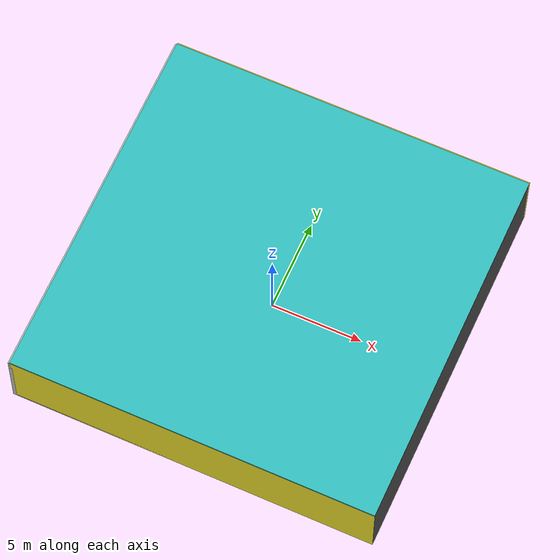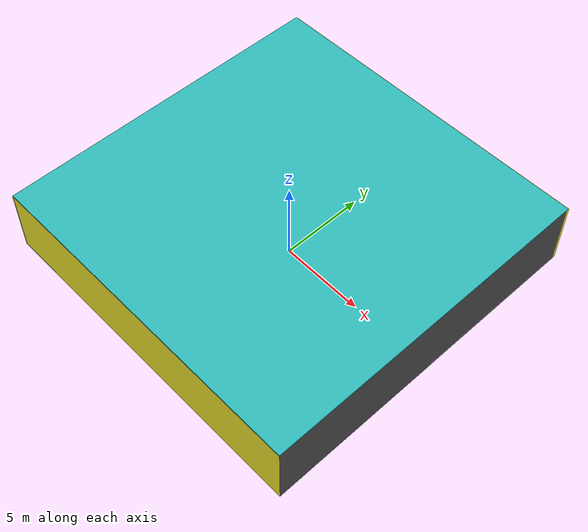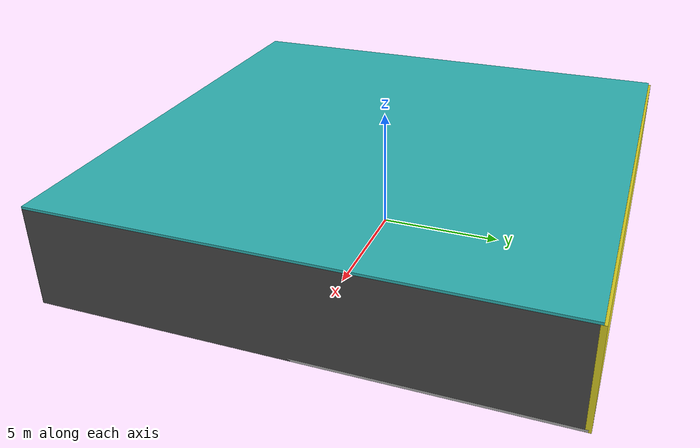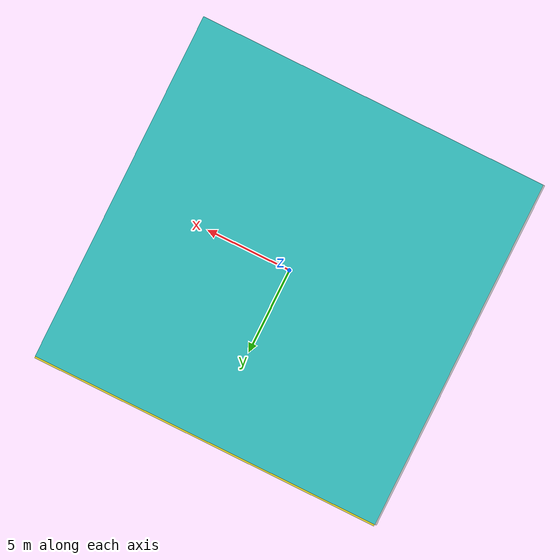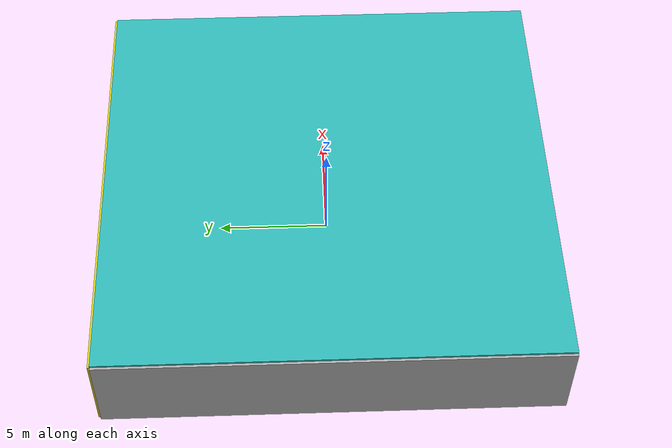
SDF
<sdf version="1.4">
 <world name="default">
  <physics type="ode">
   <max_step_size>0.001</max_step_size>
   <real_time_factor>1</real_time_factor>
   <real_time_update_rate>1000</real_time_update_rate>
   <gravity>0 0 -9.8</gravity>
  </physics>
  <scene><ambient>0.4 0.4 0.4 1</ambient><background>0.7 0.7 0.7 1</background><shadows>1</shadows></scene>
  <model name="Surrounding">
   <static>1</static>
   <link name="Ceiling">
    <collision name="Ceiling_Collision"><geometry><box><size>20 20 0.1</size></box></geometry></collision>
    <visual name="Ceiling_Visual">
     <geometry><box><size>20 20 0.1</size></box></geometry>
     <material>
      <script>
       <uri>file://media/materials/scripts/gazebo.material</uri>
       <name>Gazebo/TurquoiseGlowOutline</name>
      </script>
     </material>
    </visual>
    <pose>0 0 4.05 0 0 0</pose>
   </link>
   <link name="Wall_South">
    <collision name="Wall_South_Collision">
     <geometry><box><size>20 0 4</size></box></geometry>
     <pose>0 0 2 0 -0 0</pose>
    </collision>
    <visual name="Wall_South_Visual">
     <pose>0 0 2 0 -0 0</pose>
     <geometry><box><size>20 0 4</size></box></geometry>
     <material>
      <script><uri>file://media/materials/scripts/gazebo.material</uri><name>Gazebo/YellowGlow</name></script>
     </material>
    </visual>
    <velocity_decay><linear>0</linear><angular>0</angular></velocity_decay>
    <pose>0 -10 0 0 -0 0</pose>
   </link>
   <link name="Wall_East">
    <collision name="Wall_21_Collision">
     <geometry><box><size>20 0 4</size></box></geometry>
     <pose>0 0 2 0 -0 0</pose>
    </collision>
    <visual name="Wall_21_Visual">
     <pose>0 0 2 0 -0 0</pose>
     <geometry><box><size>20 0 4</size></box></geometry>
     <material>
      <script><uri>file://media/materials/scripts/gazebo.material</uri><name>Gazebo/DarkGrey</name></script>
     </material>
    </visual>
    <velocity_decay><linear>0</linear><angular>0</angular></velocity_decay>
    <pose>10 0 0 0 -0 1.5708</pose>
   </link>
   <link name="Wall_North">
    <collision name="Wall_22_Collision">
     <geometry><box><size>20 0.2 4</size></box></geometry>
     <pose>0 0 2 0 -0 0</pose>
    </collision>
    <visual name="Wall_22_Visual">
     <pose>0 0 2 0 -0 0</pose>
     <geometry><box><size>20 0.2 4</size></box></geometry>
     <material>
      <script><uri>file://media/materials/scripts/gazebo.material</uri><name>Gazebo/Yellow</name></script>
     </material>
    </visual>
    <velocity_decay><linear>0</linear><angular>0</angular></velocity_decay>
    <pose>0 10 0 0 -0 0</pose>
   </link>
   <link name="Wall_West">
    <collision name="Wall_23_Collision">
     <geometry><box><size>20 0.2 4</size></box></geometry>
     <pose>0 0 2 0 -0 0</pose>
    </collision>
    <visual name="Wall_23_Visual">
     <pose>0 0 2 0 -0 0</pose>
     <geometry><box><size>20 0.2 4</size></box></geometry>
     <material>
      <script><uri>file://media/materials/scripts/gazebo.material</uri><name>Gazebo/Pioneer2Body</name></script>
     </material>
    </visual>
    <velocity_decay><linear>0</linear><angular>0</angular></velocity_decay>
    <pose>-10 0 0 0 0 -1.5708</pose>
   </link>
   <link name="Ground_link">
    <collision name="collision">
     <pose>0 0 .05 0 -0 0</pose>
     <geometry><box><size>20 20 0.1</size></box></geometry>
    </collision>
    <visual name="visual">
     <pose>0 0 .05 0 -0 0</pose>
     <geometry><box><size>20 20 0.1</size></box></geometry>
     <material>
      <script><uri>file://media/materials/scripts/gazebo.material</uri><name>Gazebo/PioneerBody</name></script>
     </material>
    </visual>
   </link>
   <static>1</static>
  </model>
  <spherical_coordinates>
   <surface_model>EARTH_WGS84</surface_model>
   <latitude_deg>0</latitude_deg>
   <longitude_deg>0</longitude_deg>
   <elevation>0</elevation>
   <heading_deg>0</heading_deg>
  </spherical_coordinates>
  <light name="lightball_0" type="diffuse">
   <diffuse>0.8 0.8 0.8 1</diffuse>
   <specular>0.2 0.2 0.2 1</specular>
   <attenuation>
    <range>100</range>
    <constant>0.7</constant>
    <linear>0.01</linear>
    <quadratic>0.001</quadratic>
   </attenuation>
   <direction>-0.5 0.1 -0.9</direction>
   <pose>2.09287444712 0.26154401377 1.91938050808 0 0 0</pose>
  </light>
  <light name="lightball_1" type="diffuse">
   <diffuse>0.8 0.8 0.8 1</diffuse>
   <specular>0.2 0.2 0.2 1</specular>
   <attenuation>
    <range>100</range>
    <constant>0.7</constant>
    <linear>0.01</linear>
    <quadratic>0.001</quadratic>
   </attenuation>
   <direction>-0.5 0.1 -0.9</direction>
   <pose>0.694462316788 2.31059564942 0.501912507264 0 0 0</pose>
  </light>
  <include><uri>model://table</uri><pose>-6.72860301817 7.49026104786 0 0 0 1.4713402715</pose></include>
  <include>
   <uri>model://textured_shapes</uri>
   <pose>-5.28834143657 1.20883297494 0 0 0 1.55733736028</pose>
  </include>
  <include><uri>model://cabinet</uri><pose>-1.95925237347 -4.20538149253 0 0 0 0.928605705657</pose></include>
  <include><uri>model://cabinet</uri><pose>1.36795697289 -3.71600151261 0 0 0 0.0890691900727</pose></include>
  <include>
   <uri>model://textured_shapes</uri>
   <pose>3.96156772198 -7.86280690803 0 0 0 1.35724225109</pose>
  </include>
  <include><uri>model://table</uri><pose>4.54692012043 -1.63456795944 0 0 0 3.03039932294</pose></include>
  <include>
   <uri>model://robocup_3Dsim_goal</uri>
   <pose>6.71703594841 -4.91411026014 0 0 0 2.96063182406</pose>
  </include>
  <include><uri>model://table</uri><pose>7.04090772326 2.04915665478 0 0 0 2.82489372458</pose></include>
 </world>
</sdf>

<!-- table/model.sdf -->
<sdf version="1.5">
  <model name="table">
    <static>true</static>
    <link name="link">
      <collision name="surface">
        <pose>0 0 1.0 0 0 0</pose>
        <geometry>
          <box>
            <size>1.5 0.8 0.03</size>
          </box>
        </geometry>
        <surface>
          <friction>
            <ode>
              <mu>0.6</mu>
              <mu2>0.6</mu2>
            </ode>
          </friction>
        </surface>
      </collision>
      <visual name="visual1">
        <pose>0 0 1.0 0 0 0</pose>
        <geometry>
          <box>
            <size>1.5 0.8 0.03</size>
          </box>
        </geometry>
        <material>
          <script>
            <uri>model://media/materials/scripts/gazebo.material</uri>
            <name>Gazebo/Wood</name>
          </script>
        </material>
      </visual>
      <collision name="front_left_leg">
        <pose>0.68 0.38 0.5 0 0 0</pose>
        <geometry>
          <cylinder>
            <radius>0.02</radius>
            <length>1.0</length>
          </cylinder>
        </geometry>
      </collision>
      <visual name="front_left_leg">
        <pose>0.68 0.38 0.5 0 0 0</pose>
        <geometry>
          <cylinder>
            <radius>0.02</radius>
            <length>1.0</length>
          </cylinder>
        </geometry>
        <material>
          <script>
            <uri>model://media/materials/scripts/gazebo.material</uri>
            <name>Gazebo/Grey</name>
          </script>
        </material>
      </visual>
      <collision name="front_right_leg">
        <pose>0.68 -0.38 0.5 0 0 0</pose>
        <geometry>
          <cylinder>
            <radius>0.02</radius>
            <length>1.0</length>
          </cylinder>
        </geometry>
      </collision>
      <visual name="front_right_leg">
        <pose>0.68 -0.38 0.5 0 0 0</pose>
        <geometry>
          <cylinder>
            <radius>0.02</radius>
            <length>1.0</length>
          </cylinder>
        </geometry>
        <material>
          <script>
            <uri>model://media/materials/scripts/gazebo.material</uri>
            <name>Gazebo/Grey</name>
          </script>
        </material>
      </visual>
      <collision name="back_right_leg">
        <pose>-0.68 -0.38 0.5 0 0 0</pose>
        <geometry>
          <cylinder>
            <radius>0.02</radius>
            <length>1.0</length>
          </cylinder>
        </geometry>
      </collision>
      <visual name="back_right_leg">
        <pose>-0.68 -0.38 0.5 0 0 0</pose>
        <geometry>
          <cylinder>
            <radius>0.02</radius>
            <length>1.0</length>
          </cylinder>
        </geometry>
        <material>
          <script>
            <uri>model://media/materials/scripts/gazebo.material</uri>
            <name>Gazebo/Grey</name>
          </script>
        </material>
      </visual>
      <collision name="back_left_leg">
        <pose>-0.68 0.38 0.5 0 0 0</pose>
        <geometry>
          <cylinder>
            <radius>0.02</radius>
            <length>1.0</length>
          </cylinder>
        </geometry>
      </collision>
      <visual name="back_left_leg">
        <pose>-0.68 0.38 0.5 0 0 0</pose>
        <geometry>
          <cylinder>
            <radius>0.02</radius>
            <length>1.0</length>
          </cylinder>
        </geometry>
        <material>
          <script>
            <uri>model://media/materials/scripts/gazebo.material</uri>
            <name>Gazebo/Grey</name>
          </script>
        </material>
      </visual>
    </link>
  </model>
</sdf>

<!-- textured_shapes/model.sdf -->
<sdf version="1.6">
  <model name="textured_shapes">
    <pose>0 0 0.5 0 0 0</pose>
    <link name="box">
      <pose>0 -1.5 0 0 0 0</pose>
      <collision name="collision">
        <geometry>
          <box>
            <size>1 1 1</size>
          </box>
        </geometry>
      </collision>
      <visual name="visual">
        <geometry>
          <box>
            <size>1 1 1</size>
          </box>
        </geometry>
        <material>
          <script>
            <uri>model://../model_source/models/textured_shapes/materials/scripts</uri>
            <uri>model://../model_source/models/textured_shapes/materials/textures</uri>
            <name>TexturedShape/Squares</name>
          </script>
        </material>
      </visual>
    </link>
    <link name="sphere">
      <collision name="collision">
        <geometry>
          <sphere>
            <radius>0.5</radius>
          </sphere>
        </geometry>
      </collision>
      <visual name="visual">
        <geometry>
          <sphere>
            <radius>0.5</radius>
          </sphere>
        </geometry>
        <material>
          <script>
            <uri>model://../model_source/models/textured_shapes/materials/scripts</uri>
            <uri>model://../model_source/models/textured_shapes/materials/textures</uri>
            <name>TexturedShape/Squares</name>
          </script>
        </material>
      </visual>
    </link>
    <link name="cylinder">
      <pose>0 1.5 0 0 0 0</pose>
      <collision name="collision">
        <geometry>
          <cylinder>
            <radius>0.5</radius>
            <length>1</length>
          </cylinder>
        </geometry>
      </collision>
      <visual name="visual">
        <geometry>
          <cylinder>
            <radius>0.5</radius>
            <length>1</length>
          </cylinder>
        </geometry>
        <material>
          <script>
            <uri>model://../model_source/models/textured_shapes/materials/scripts</uri>
            <uri>model://../model_source/models/textured_shapes/materials/textures</uri>
            <name>TexturedShape/Squares</name>
          </script>
        </material>
      </visual>
    </link>
  </model>
</sdf>

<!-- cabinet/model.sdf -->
<sdf version="1.5">
  <model name="cabinet">
    <static>true</static>
    <link name="cabinet_bottom_plate">
      <inertial>
        <pose>0 0 -1 0 0 0</pose>
        <inertia>
          <ixx>2.050000</ixx>
          <ixy>0</ixy>
          <ixz>0</ixz>
          <iyy>2.050000</iyy>
          <iyz>0</iyz>
          <izz>2.050000</izz>
        </inertia>
        <mass>25.000000</mass>
      </inertial>
      <collision name="cabinet_bottom_plate_geom">
        <pose>0 0 0.010000 0 0 0</pose>
        <geometry>
          <box>
            <size>0.450000 0.450000 0.020000</size>
          </box>
        </geometry>
      </collision>
      <visual name="cabinet_bottom_plate_geom_visual">
        <pose>0 0 0.010000 0 0 0</pose>
        <geometry>
          <box>
            <size>0.450000 0.450000 0.020000</size>
          </box>
        </geometry>
        <material>
          <script>
            <uri>model://media/materials/scripts/gazebo.material</uri>
            <name>Gazebo/Wood</name>
          </script>
        </material>
      </visual>
      <collision name="cabinet_bottom_plate_geom_cabinet_back_plate">
        <pose>0.235000 0 0.510000 0 0 0</pose>
        <geometry>
          <box>
            <size>0.020000 0.450000 1.020000</size>
          </box>
        </geometry>
      </collision>
      <visual name="cabinet_bottom_plate_geom_cabinet_back_plate_visual">
        <pose>0.235000 0 0.510000 0 0 0</pose>
        <geometry>
          <box>
            <size>0.020000 0.450000 1.020000</size>
          </box>
        </geometry>
        <material>
          <script>
            <uri>model://media/materials/scripts/gazebo.material</uri>
            <name>Gazebo/Wood</name>
          </script>
        </material>
      </visual>
      <collision name="cabinet_bottom_plate_geom_cabinet_left_plate">
        <pose>0 0.235000 0.510000 0 0 0</pose>
        <geometry>
          <box>
            <size>0.450000 0.020000 1.020000</size>
          </box>
        </geometry>
      </collision>
      <visual name="cabinet_bottom_plate_geom_cabinet_left_plate_visual">
        <pose>0 0.235000 0.510000 0 0 0</pose>
        <geometry>
          <box>
            <size>0.450000 0.020000 1.020000</size>
          </box>
        </geometry>
        <material>
          <script>
            <uri>model://media/materials/scripts/gazebo.material</uri>
            <name>Gazebo/Wood</name>
          </script>
        </material>
      </visual>
      <collision name="cabinet_bottom_plate_geom_cabinet_middle_plate">
        <pose>0 0 0.510000 0 0 0</pose>
        <geometry>
          <box>
            <size>0.450000 0.450000 0.020000</size>
          </box>
        </geometry>
      </collision>
      <visual name="cabinet_bottom_plate_geom_cabinet_middle_plate_visual">
        <pose>0 0 0.510000 0 0 0</pose>
        <geometry>
          <box>
            <size>0.450000 0.450000 0.020000</size>
          </box>
        </geometry>
        <material>
          <script>
            <uri>model://media/materials/scripts/gazebo.material</uri>
            <name>Gazebo/Wood</name>
          </script>
        </material>
      </visual>
      <collision name="cabinet_bottom_plate_geom_cabinet_right_plate">
        <pose>0 -0.235000 0.510000 0 0 0</pose>
        <geometry>
          <box>
            <size>0.450000 0.020000 1.020000</size>
          </box>
        </geometry>
      </collision>
      <visual name="cabinet_bottom_plate_geom_cabinet_right_plate_visual">
        <pose>0 -0.235000 0.510000 0 0 0</pose>
        <geometry>
          <box>
            <size>0.450000 0.020000 1.020000</size>
          </box>
        </geometry>
        <material>
          <script>
            <uri>model://media/materials/scripts/gazebo.material</uri>
            <name>Gazebo/Wood</name>
          </script>
        </material>
      </visual>
      <collision name="cabinet_bottom_plate_geom_cabinet_top_plate">
        <pose>0 0 1.010000 0 0 0</pose>
        <geometry>
          <box>
            <size>0.450000 0.450000 0.020000</size>
          </box>
        </geometry>
      </collision>
      <visual name="cabinet_bottom_plate_geom_cabinet_top_plate_visual">
        <pose>0 0 1.010000 0 0 0</pose>
        <geometry>
          <box>
            <size>0.450000 0.450000 0.020000</size>
          </box>
        </geometry>
        <material>
          <script>
            <uri>model://media/materials/scripts/gazebo.material</uri>
            <name>Gazebo/Wood</name>
          </script>
        </material>
      </visual>
    </link>
  </model>
</sdf>

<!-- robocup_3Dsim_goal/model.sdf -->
<sdf version="1.5">
  <model name="robocup_3d_goal">
    <static>true</static>
    <link name="left_post">
      <pose>0 1.05 0.45 0 0 0</pose>
      <collision name="collision">
        <geometry>
          <cylinder>
            <radius>0.05</radius>
            <length>0.9</length>
          </cylinder>
        </geometry>
      </collision>
      <visual name="visual">
        <geometry>
          <cylinder>
            <radius>0.05</radius>
            <length>0.9</length>
          </cylinder>
        </geometry>
        <material>
          <script>
            <uri>file://media/materials/scripts/gazebo.material</uri>
            <name>Gazebo/ZincYellow</name>
          </script>
        </material>
      </visual>
    </link>
    <link name="left_support_horiz_lower">
      <pose>0.30 1.05 0.01 0 0 0</pose>
      <collision name="collision">
        <geometry>
          <box>
            <size>0.50 0.02 0.02</size>
          </box>
        </geometry>
      </collision>
      <visual name="visual">
        <geometry>
          <box>
            <size>0.50 0.02 0.02</size>
          </box>
        </geometry>
        <material>
          <script>
            <uri>file://media/materials/scripts/gazebo.material</uri>
            <name>Gazebo/White</name>
          </script>
        </material>
      </visual>
    </link>
    <link name="left_support_horiz_upper">
      <pose>0.30 1.05 0.79 0 0 0</pose>
      <collision name="collision">
        <geometry>
          <box>
            <size>0.50 0.02 0.02</size>
          </box>
        </geometry>
      </collision>
      <visual name="visual">
        <geometry>
          <box>
            <size>0.50 0.02 0.02</size>
          </box>
        </geometry>
        <material>
          <script>
            <uri>file://media/materials/scripts/gazebo.material</uri>
            <name>Gazebo/White</name>
          </script>
        </material>
      </visual>
    </link>
    <link name="left_support_vertical">
      <pose>0.56 1.05 0.4 0 1.5708 0</pose>
      <collision name="collision">
        <geometry>
          <box>
            <size>0.80 0.02 0.02</size>
          </box>
        </geometry>
      </collision>
      <visual name="visual">
        <geometry>
          <box>
            <size>0.80 0.02 0.02</size>
          </box>
        </geometry>
        <material>
          <script>
            <uri>file://media/materials/scripts/gazebo.material</uri>
            <name>Gazebo/White</name>
          </script>
        </material>
      </visual>
    </link>
    <link name="right_support_horiz_lower">
      <pose>0.30 -1.05 0.01 0 0 0</pose>
      <collision name="collision">
        <geometry>
          <box>
            <size>0.50 0.02 0.02</size>
          </box>
        </geometry>
      </collision>
      <visual name="visual">
        <geometry>
          <box>
            <size>0.50 0.02 0.02</size>
          </box>
        </geometry>
        <material>
          <script>
            <uri>file://media/materials/scripts/gazebo.material</uri>
            <name>Gazebo/White</name>
          </script>
        </material>
      </visual>
    </link>
    <link name="right_support_horiz_upper">
      <pose>0.30 -1.05 0.79 0 0 0</pose>
      <collision name="collision">
        <geometry>
          <box>
            <size>0.50 0.02 0.02</size>
          </box>
        </geometry>
      </collision>
      <visual name="visual">
        <geometry>
          <box>
            <size>0.50 0.02 0.02</size>
          </box>
        </geometry>
        <material>
          <script>
            <uri>file://media/materials/scripts/gazebo.material</uri>
            <name>Gazebo/White</name>
          </script>
        </material>
      </visual>
    </link>
    <link name="right_support_vertical">
      <pose>0.56 -1.05 0.4 0 1.5708 0</pose>
      <collision name="collision">
        <geometry>
          <box>
            <size>0.80 0.02 0.02</size>
          </box>
        </geometry>
      </collision>
      <visual name="visual">
        <geometry>
          <box>
            <size>0.80 0.02 0.02</size>
          </box>
        </geometry>
        <material>
          <script>
            <uri>file://media/materials/scripts/gazebo.material</uri>
            <name>Gazebo/White</name>
          </script>
        </material>
      </visual>
    </link>
    <link name="center_support_horiz_lower">
      <pose>0.56 0 0.01 0 1.5708 0</pose>
      <collision name="collision">
        <geometry>
          <box>
            <size>0.02 2.08 0.02</size>
          </box>
        </geometry>
      </collision>
      <visual name="visual">
        <geometry>
          <box>
            <size>0.02 2.08 0.02</size>
          </box>
        </geometry>
        <material>
          <script>
            <uri>file://media/materials/scripts/gazebo.material</uri>
            <name>Gazebo/White</name>
          </script>
        </material>
      </visual>
    </link>
    <link name="center_support_horiz_upper">
      <pose>0.56 0 0.79 0 1.5708 0</pose>
      <collision name="collision">
        <geometry>
          <box>
            <size>0.02 2.08 0.02</size>
          </box>
        </geometry>
      </collision>
      <visual name="visual">
        <geometry>
          <box>
            <size>0.02 2.08 0.02</size>
          </box>
        </geometry>
        <material>
          <script>
            <uri>file://media/materials/scripts/gazebo.material</uri>
            <name>Gazebo/White</name>
          </script>
        </material>
      </visual>
    </link>
    <link name="right_post">
      <pose>0 -1.05 0.45 0 0 0</pose>
      <collision name="collision">
        <geometry>
          <cylinder>
            <radius>0.05</radius>
            <length>0.9</length>
          </cylinder>
        </geometry>
      </collision>
      <visual name="visual">
        <geometry>
          <cylinder>
            <radius>0.05</radius>
            <length>0.9</length>
          </cylinder>
        </geometry>
        <material>
          <script>
            <uri>file://media/materials/scripts/gazebo.material</uri>
            <name>Gazebo/ZincYellow</name>
          </script>
        </material>
      </visual>
    </link>
    <link name="crossbar">
      <pose>0 0 0.85 1.57 1.57 0</pose>
      <collision name="collision">
        <geometry>
          <cylinder>
            <radius>0.05</radius>
            <length>2.0</length>
          </cylinder>
        </geometry>
      </collision>
      <visual name="visual">
        <geometry>
          <cylinder>
            <radius>0.05</radius>
            <length>2.0</length>
          </cylinder>
        </geometry>
        <material>
          <script>
            <uri>file://media/materials/scripts/gazebo.material</uri>
            <name>Gazebo/ZincYellow</name>
          </script>
        </material>
      </visual>
    </link>
    <link name="center_net">
      <pose>0.56 0 0.40 0 0 0</pose>
      <collision name="collision">
        <geometry>
          <box>
            <size>0.01 2.1 0.80</size>
          </box>
        </geometry>
      </collision>
      <visual name="visual">
        <geometry>
          <box>
            <size>0.01 2.1 0.80</size>
          </box>
        </geometry>
        <material>
          <script>
            <uri>model://../model_source/models/robocup09_spl_field/materials/scripts/</uri>
            <uri>model://../model_source/models/robocup09_spl_field/materials/textures/</uri>
            <name>RoboCup/Net</name>
          </script>
        </material>
      </visual>
    </link>
    <link name="left_net">
      <pose>0.30 1.05 0.40 0 0 0</pose>
      <collision name="collision">
        <geometry>
          <box>
            <size>0.50 0.01 0.76</size>
          </box>
        </geometry>
      </collision>
      <visual name="visual">
        <geometry>
          <box>
            <size>0.50 0.01 0.76</size>
          </box>
        </geometry>
        <material>
          <script>
            <uri>model://../model_source/models/robocup09_spl_field/materials/scripts/</uri>
            <uri>model://../model_source/models/robocup09_spl_field/materials/textures/</uri>
            <name>RoboCup/Net</name>
          </script>
        </material>
      </visual>
    </link>
    <link name="right_net">
      <pose>0.30 -1.05 0.40 0 0 0</pose>
      <collision name="collision">
        <geometry>
          <box>
            <size>0.50 0.01 0.76</size>
          </box>
        </geometry>
      </collision>
      <visual name="visual">
        <geometry>
          <box>
            <size>0.50 0.01 0.76</size>
          </box>
        </geometry>
        <material>
          <script>
            <uri>model://../model_source/models/robocup09_spl_field/materials/scripts/</uri>
            <uri>model://../model_source/models/robocup09_spl_field/materials/textures/</uri>
            <name>RoboCup/Net</name>
          </script>
        </material>
      </visual>
    </link>
  </model>
</sdf>
